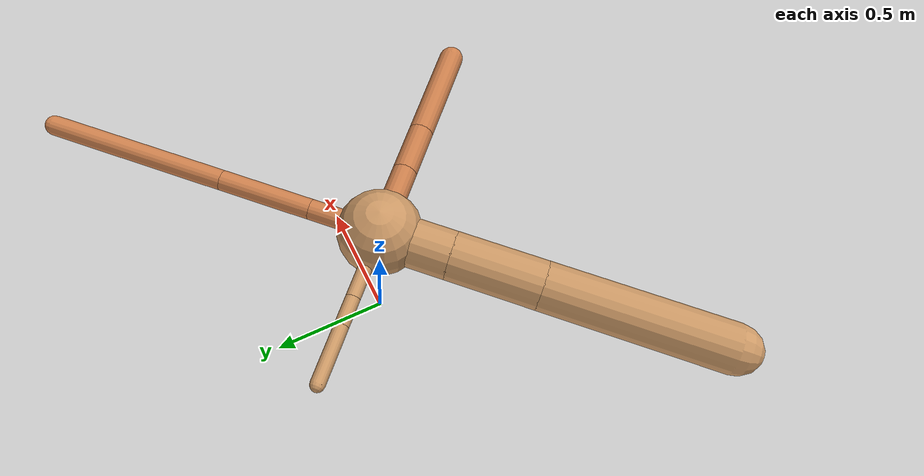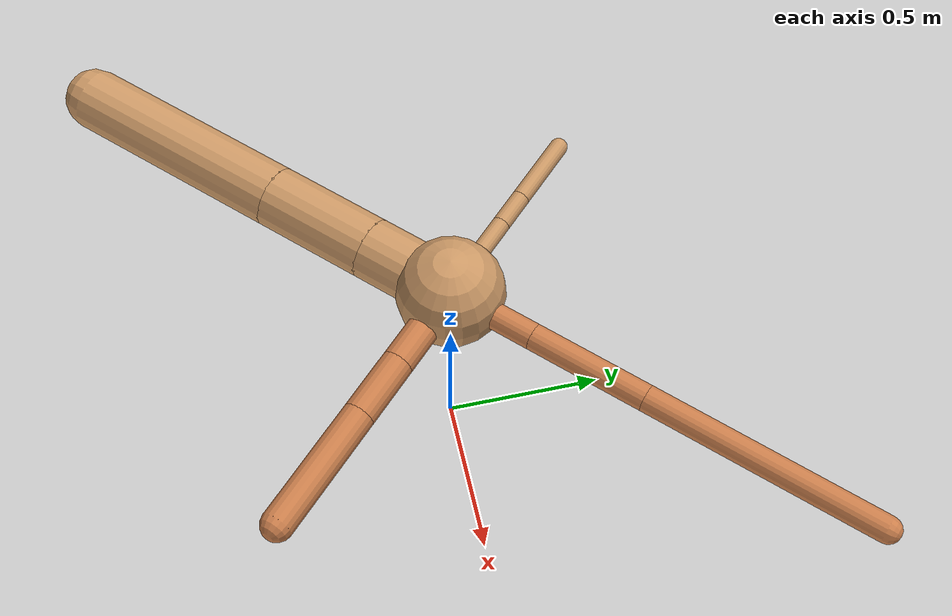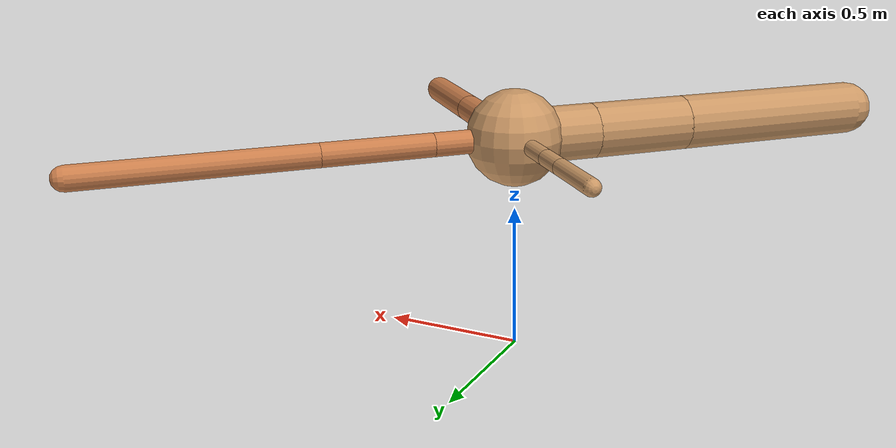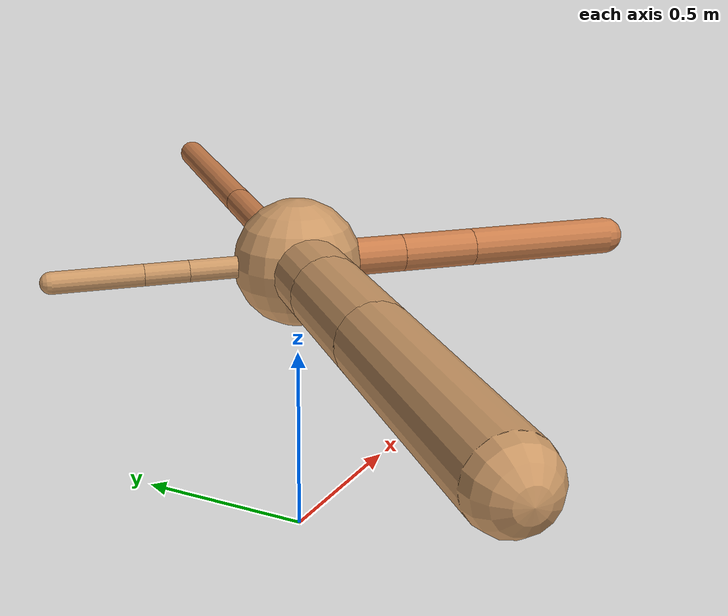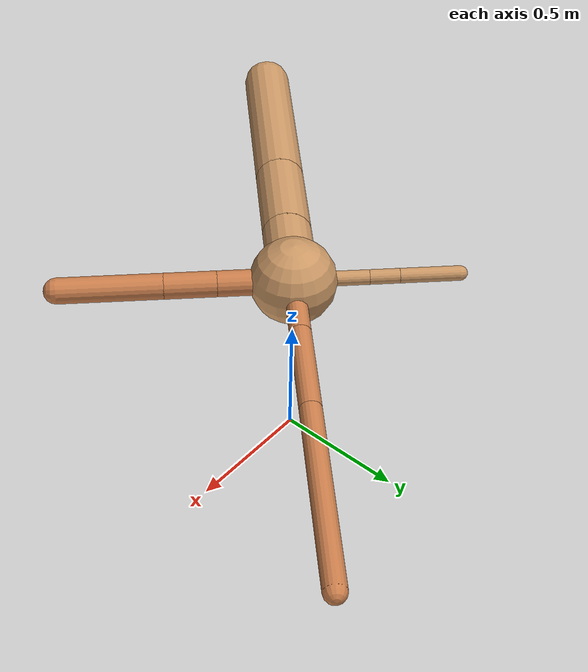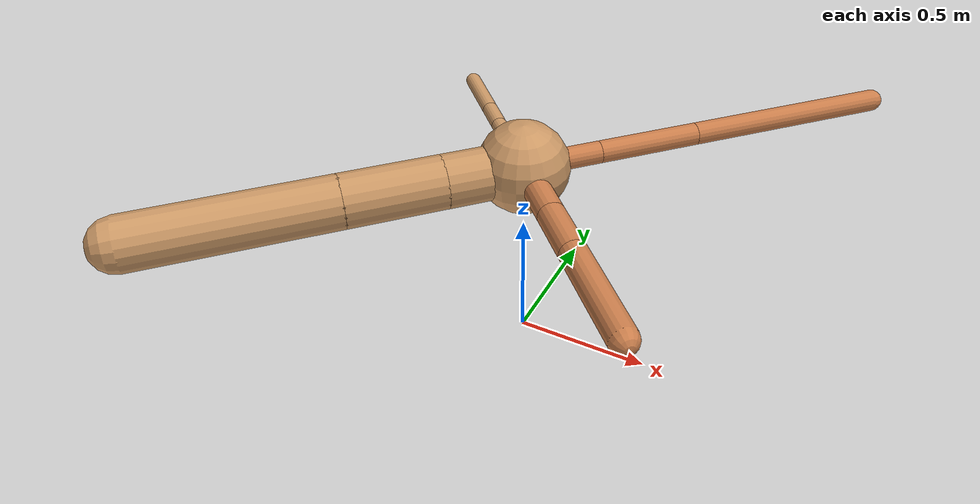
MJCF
<?xml version="1.0" ?>
<mujoco model="ant">

	<compiler angle="degree" coordinate="local" inertiafromgeom="true"/>

	<option integrator="RK4" timestep="0.01"/>

	<custom>

		<numeric data="0.0 0.0 0.55 1.0 0.0 0.0 0.0 0.0 1.0 0.0 -1.0 0.0 -1.0 0.0 1.0" name="init_qpos"/>

	</custom>

	<default>

		<joint armature="1" damping="1" limited="true"/>

		<geom conaffinity="0" condim="3" density="5.0" friction="1.5 0.1 0.1" margin="0.01" rgba="0.8 0.6 0.4 1"/>

	</default>

	<worldbody>

		<body name="torso" pos="0 0 0.75">

			<geom name="torso_geom" pos="0 0 0" size="0.16457821645796045" type="sphere"/>

			<!--joint armature="0" damping="0" limited="false" margin="0.01" name="root" pos="0 0 0" type="free"/-->

			<body name="front_left_leg" pos="0 0 0">

				<geom fromto="0 0 0 0.2 0.2 0" name="aux_1_geom" size="0.040210675428442415" type="capsule" rgba=".8 .5 .3 1"/>

				<body name="aux_1" pos="0.2 0.2 0">

					<joint axis="0 0 1" name="hip_1" pos="0.0 0.0 0.0" range="-40 40" type="hinge"/>

					<geom fromto="0 0 0 0.26295884902989347 0.26295884902989347 0" name="left_leg_geom" size="0.040210675428442415" type="capsule" rgba=".8 .5 .3 1"/>

					<body pos="0.26295884902989347 0.26295884902989347 0" name="front_left_foot">

						<joint axis="-1 1 0" name="ankle_1" pos="0.0 0.0 0.0" range="30 100" type="hinge"/>

						<geom fromto="0 0 0 0.5259176980597869 0.5259176980597869 0" name="left_ankle_geom" size="0.040210675428442415" type="capsule" rgba=".8 .5 .3 1"/>

					</body>

				</body>

			</body>

			<body name="front_right_leg" pos="0 0 0">

				<geom fromto="0 0 0 -0.2 0.2 0" name="aux_2_geom" size="0.028218142479001677" type="capsule"/>

				<body name="aux_2" pos="-0.2 0.2 0">

					<joint axis="0 0 1" name="hip_2" pos="0.0 0.0 0.0" range="-40 40" type="hinge"/>

					<geom fromto="0 0 0 -0.08021726301148487 0.08021726301148487 0" name="right_leg_geom" size="0.028218142479001677" type="capsule"/>

					<body pos="-0.08021726301148487 0.08021726301148487 0" name="front_right_foot">

						<joint axis="1 1 0" name="ankle_2" pos="0.0 0.0 0.0" range="-100 -30" type="hinge"/>

						<geom fromto="0 0 0 -0.16043452602296973 0.16043452602296973 0" name="right_ankle_geom" size="0.028218142479001677" type="capsule"/>

					</body>

				</body>

			</body>

			<body name="left_back_leg" pos="0 0 0">

				<geom fromto="0 0 0 -0.2 -0.2 0" name="aux_3_geom" size="0.09515261779654904" type="capsule"/>

				<body name="aux_3" pos="-0.2 -0.2 0">

					<joint axis="0 0 1" name="hip_3" pos="0.0 0.0 0.0" range="-40 40" type="hinge"/>

					<geom fromto="0 0 0 -0.24663353117109 -0.24663353117109 0" name="back_leg_geom" size="0.09515261779654904" type="capsule"/>

					<body pos="-0.24663353117109 -0.24663353117109 0" name="left_back_foot">

						<joint axis="-1 1 0" name="ankle_3" pos="0.0 0.0 0.0" range="-100 -30" type="hinge"/>

						<geom fromto="0 0 0 -0.49326706234218 -0.49326706234218 0" name="third_ankle_geom" size="0.09515261779654904" type="capsule"/>

					</body>

				</body>

			</body>

			<body name="right_back_leg" pos="0 0 0">

				<geom fromto="0 0 0 0.2 -0.2 0" name="aux_4_geom" size="0.0489881834031845" type="capsule" rgba=".8 .5 .3 1"/>

				<body name="aux_4" pos="0.2 -0.2 0">

					<joint axis="0 0 1" name="hip_4" pos="0.0 0.0 0.0" range="-40 40" type="hinge"/>

					<geom fromto="0 0 0 0.13929200626144753 -0.13929200626144753 0" name="rightback_leg_geom" size="0.0489881834031845" type="capsule" rgba=".8 .5 .3 1"/>

					<body pos="0.13929200626144753 -0.13929200626144753 0" name="right_back_foot">

						<joint axis="1 1 0" name="ankle_4" pos="0.0 0.0 0.0" range="30 100" type="hinge"/>

						<geom fromto="0 0 0 0.27858401252289505 -0.27858401252289505 0" name="fourth_ankle_geom" size="0.0489881834031845" type="capsule" rgba=".8 .5 .3 1"/>

					</body>

				</body>

			</body>

		</body>

	</worldbody>

	<actuator>

		<motor ctrllimited="true" ctrlrange="-1.0 1.0" joint="hip_4" gear="150"/>

		<motor ctrllimited="true" ctrlrange="-1.0 1.0" joint="ankle_4" gear="150"/>

		<motor ctrllimited="true" ctrlrange="-1.0 1.0" joint="hip_1" gear="150"/>

		<motor ctrllimited="true" ctrlrange="-1.0 1.0" joint="ankle_1" gear="150"/>

		<motor ctrllimited="true" ctrlrange="-1.0 1.0" joint="hip_2" gear="150"/>

		<motor ctrllimited="true" ctrlrange="-1.0 1.0" joint="ankle_2" gear="150"/>

		<motor ctrllimited="true" ctrlrange="-1.0 1.0" joint="hip_3" gear="150"/>

		<motor ctrllimited="true" ctrlrange="-1.0 1.0" joint="ankle_3" gear="150"/>

	</actuator>

</mujoco>
